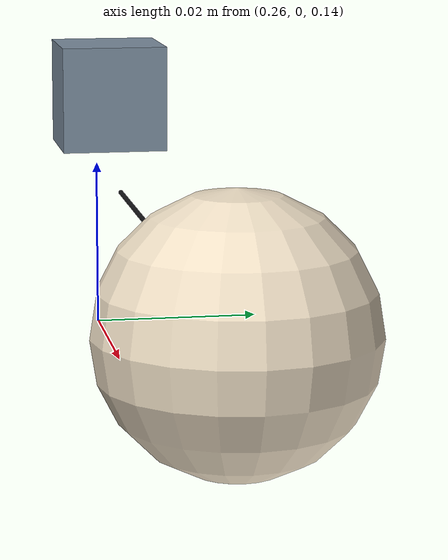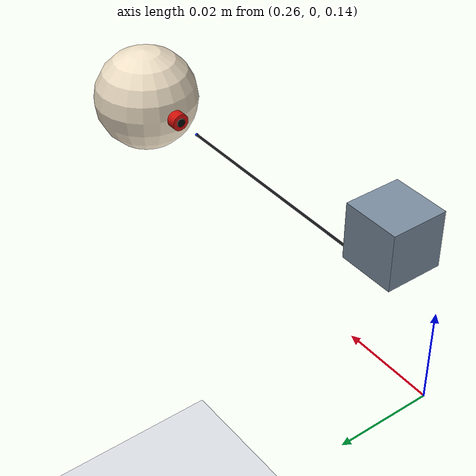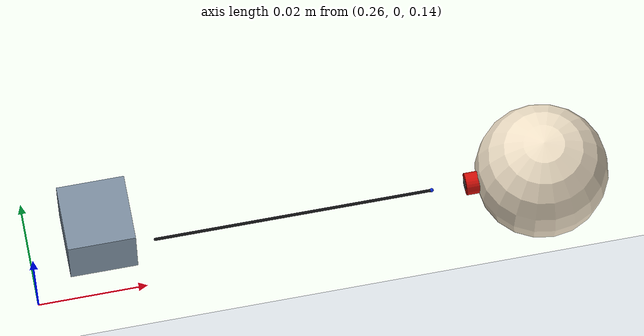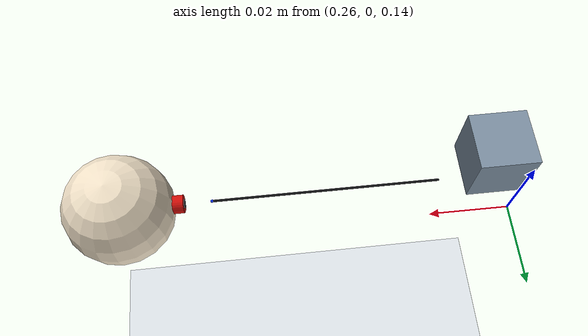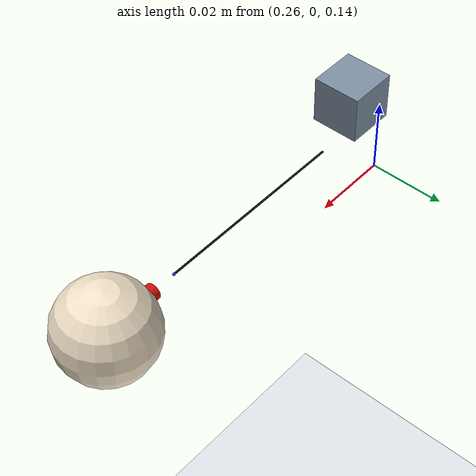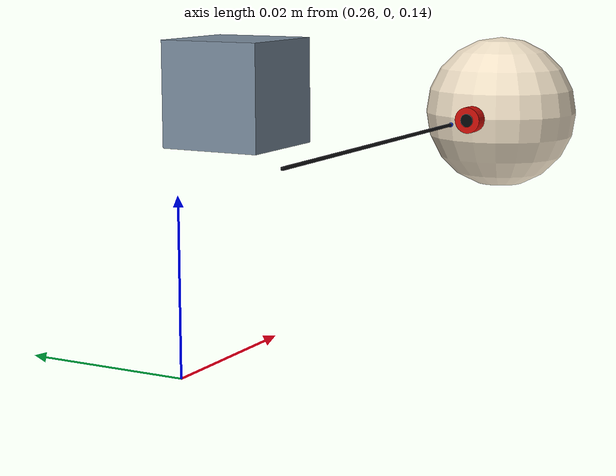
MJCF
<mujoco model="single_arm_trocar_visual_alignment">
  <compiler angle="radian" coordinate="local"/>
  <option timestep="0.002" gravity="0 0 0" integrator="implicitfast"/>

  <visual>
    <global offwidth="1280" offheight="720"/>
  </visual>

  <default>
    <joint damping="0.20" armature="0.0002" limited="true"/>
  </default>

  <asset>
    <material name="tool_mat" rgba="0.08 0.08 0.09 1"/>
    <material name="trocar_mat" rgba="0.82 0.06 0.035 1"/>
    <material name="lumen_mat" rgba="0.025 0.030 0.035 1"/>
    <material name="eye_mat" rgba="0.94 0.88 0.78 1"/>
    <material name="stage_mat" rgba="0.48 0.55 0.62 1"/>
  </asset>

  <worldbody>
    <light name="key_light" pos="0.18 -0.20 0.45" dir="0.4 0.4 -1"/>
    <light name="fill_light" pos="0.25 0.25 0.25" dir="0 -0.5 -0.5"/>
    <geom name="ground" type="plane" pos="0 0 0" size="1 1 0.01"
          rgba="0.86 0.88 0.90 1" contype="0" conaffinity="0"/>

    <geom name="eye_surface" type="sphere" pos="0.352 0 0.16" size="0.012"
          material="eye_mat" contype="0" conaffinity="0"/>
    <!-- The dark front disk visually occludes the red cylinder center and
         creates an annulus. Ground-truth sites are evaluation-only. -->
    <geom name="trocar_outer" type="cylinder" pos="0.3393 0 0.16"
          euler="0 1.57079632679 0" size="0.0020 0.0012"
          material="trocar_mat" contype="1" conaffinity="1"/>
    <geom name="trocar_lumen_visual" type="cylinder" pos="0.3380 0 0.16"
          euler="0 1.57079632679 0" size="0.0010 0.00008"
          material="lumen_mat" contype="0" conaffinity="0"/>
    <site name="trocar_center_evaluation_only" pos="0.3380 0 0.16"
          size="0.0001" rgba="0 0 0 0"/>

    <body name="tool_carriage" pos="0.282 0 0.16">
      <joint name="tool_x" type="slide" axis="1 0 0" range="-0.015 0.035"/>
      <joint name="tool_y" type="slide" axis="0 1 0" range="-0.020 0.020"/>
      <joint name="tool_z" type="slide" axis="0 0 1" range="-0.020 0.020"/>
      <geom name="tool_carriage_geom" type="box" pos="-0.010 0 0.010"
            size="0.006 0.006 0.006" material="stage_mat"
            contype="0" conaffinity="0"/>
      <camera name="eye_in_hand" mode="fixed" pos="0.025 0 0"
              xyaxes="0 -1 0 0 0 1" fovy="41.9741"/>
      <geom name="instrument_shaft" type="capsule"
            fromto="0 0 0 0.050 0 0" size="0.000255"
            material="tool_mat" contype="1" conaffinity="1"/>
      <site name="tool_tip" pos="0.050 0 0" size="0.00035"
            rgba="0.05 0.2 1 1"/>
    </body>

    <camera name="overview" mode="fixed" pos="0.18 -0.18 0.25"
            xyaxes="0.72 0.69 0 -0.30 0.31 0.90" fovy="38"/>
  </worldbody>

  <actuator>
    <position name="tool_x_position" joint="tool_x" kp="800"
              ctrlrange="-0.015 0.035"/>
    <position name="tool_y_position" joint="tool_y" kp="800"
              ctrlrange="-0.020 0.020"/>
    <position name="tool_z_position" joint="tool_z" kp="800"
              ctrlrange="-0.020 0.020"/>
  </actuator>
</mujoco>
